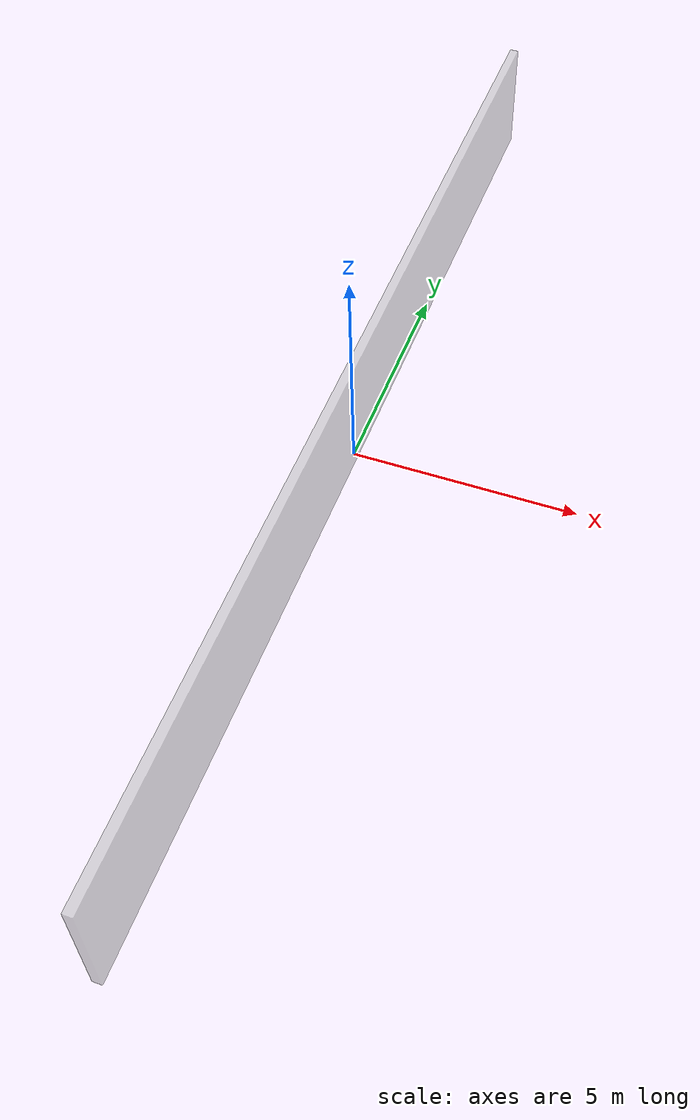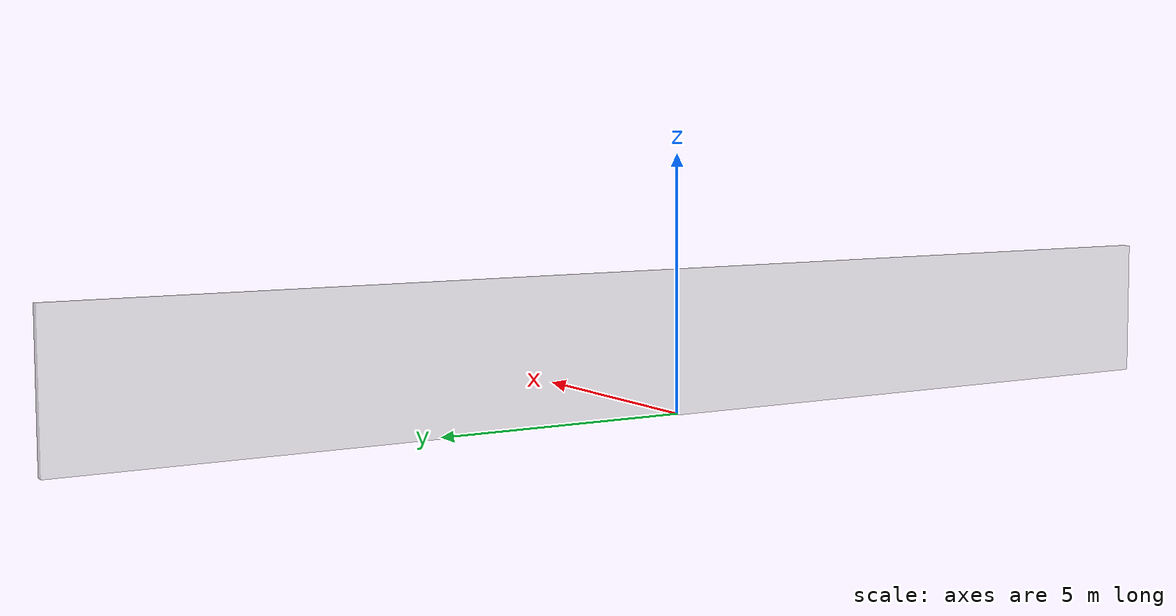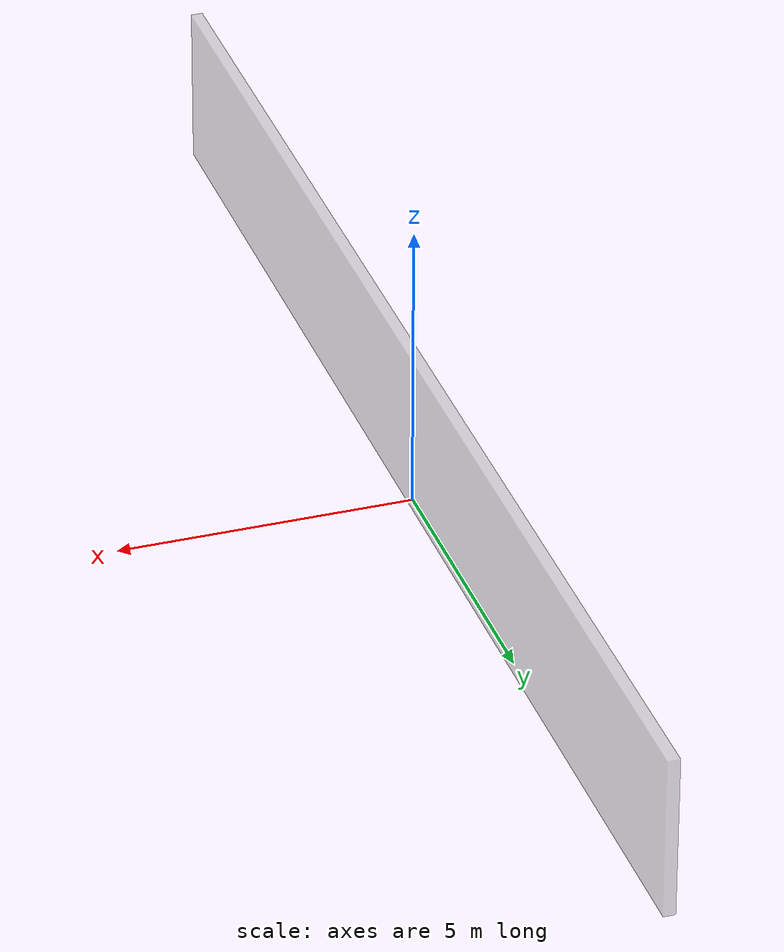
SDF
<?xml version="1.0" ?>
<sdf version="1.5">
  <model name="white_wall">
    <static>true</static>
    <link name="link">
      <pose>0 0 1.4 0 0 0</pose>
      <collision name="collision">
        <geometry>
          <box>
            <size>0.2 24.0 2.8</size>
          </box>
        </geometry>
      </collision>

      <visual name="visual">
        <geometry>
          <box>
            <size>0.2 24.0 2.8</size>
          </box>
        </geometry>
        <material>
          <script>
 		        <uri>model://sim_world/meshes/transparent/scripts</uri>
            <uri>model://sim_world/meshes/transparent/textures</uri>
            <name>vrc/transparent</name>
         </script>
        </material>
      </visual>

    </link>
  </model>
</sdf>
